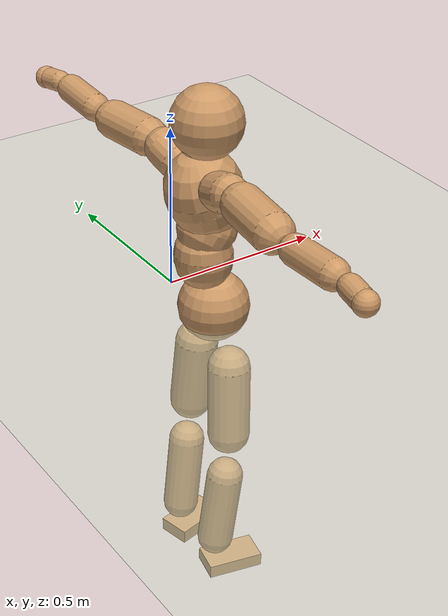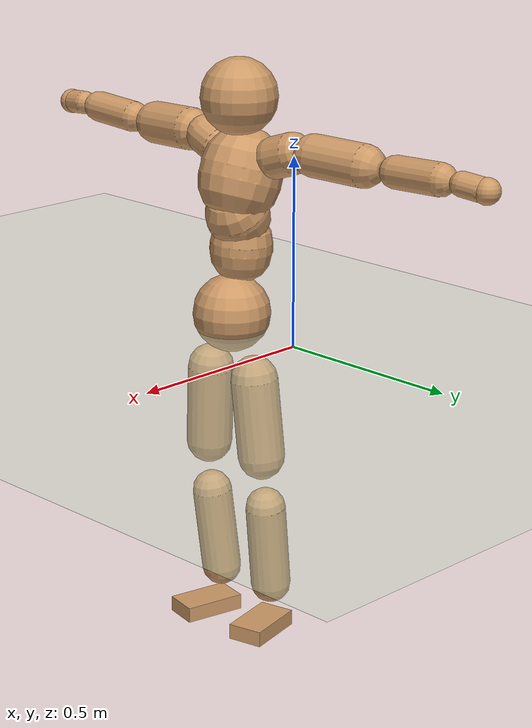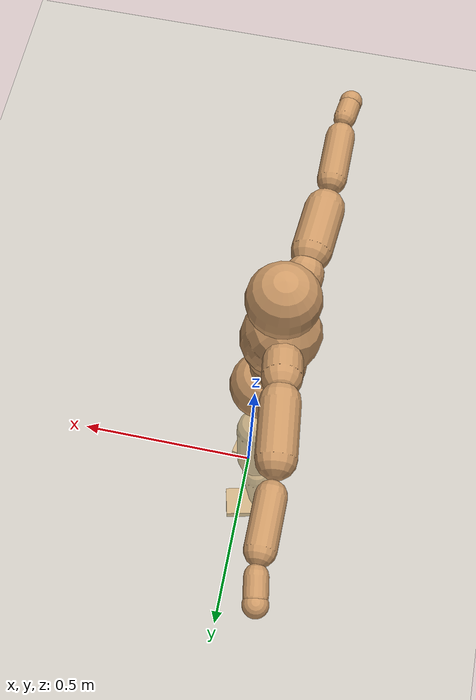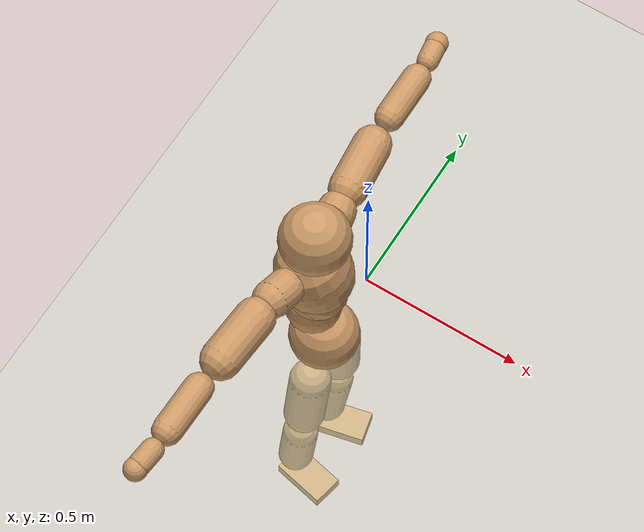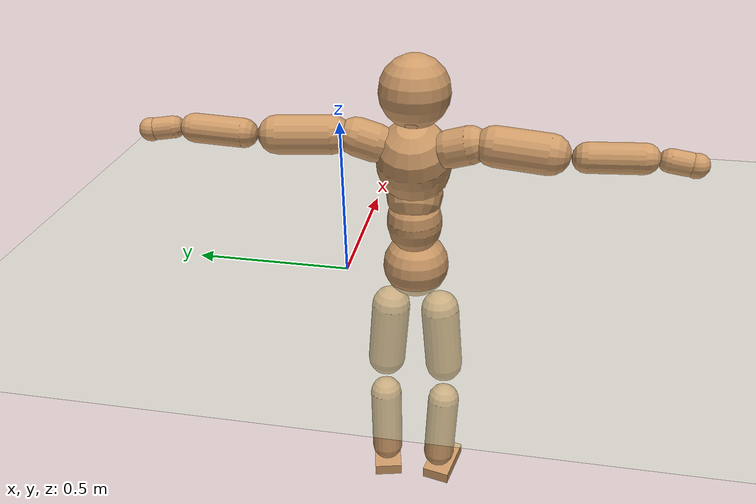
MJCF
<mujoco model="humanoid">
  <compiler coordinate="local"/>
  <default>
    <joint damping="0.0" armature="0.01" stiffness="0.0" limited="true"/>
    <geom conaffinity="1" condim="3" contype="7" margin="0.001" rgba="0.8 0.6 .4 1"/>
  </default>
  <asset>
    <texture type="skybox" builtin="gradient" rgb1=".4 .5 .6" rgb2="0 0 0" width="100" height="100"/>
    <texture builtin="flat" height="1278" mark="cross" markrgb="1 1 1" name="texgeom" random="0.01" rgb1="0.8 0.6 0.4" rgb2="0.8 0.6 0.4" type="cube" width="127"/>
    <texture builtin="checker" height="100" name="texplane" rgb1="0 0 0" rgb2="0.8 0.8 0.8" type="2d" width="100"/>
    <material name="MatPlane" reflectance="0.5" shininess="1" specular="1" texrepeat="60 60" texture="texplane"/>
    <material name="geom" texture="texgeom" texuniform="true"/>
  </asset>
  <worldbody>
    <light cutoff="100" diffuse="1 1 1" dir="-0 0 -1.3" directional="true" exponent="1" pos="0 0 1.3" specular=".1 .1 .1"/>
    <geom conaffinity="1" condim="3" name="floor" pos="0 0 0" rgba="0.8 0.9 0.8 1" size="100 100 .2" type="plane" material="MatPlane"/>
    <body name="Pelvis" pos="-0.0007 -0.2262 0.0439">
      <freejoint name="Pelvis"/>
      <geom type="sphere" contype="1" conaffinity="1" density="500" size="0.1039" pos="0.0000 0.0000 0.0000" name="Pelvis"/>
      <body name="L_Hip" pos="0.0015 0.0766 -0.094">
        <joint name="L_Hip_x" type="hinge" pos="0 0 0" axis="1 0 0" stiffness="800" damping="80" armature="0.02" range="-180.0000 180.0000"/>
        <joint name="L_Hip_y" type="hinge" pos="0 0 0" axis="0 1 0" stiffness="800" damping="80" armature="0.02" range="-180.0000 180.0000"/>
        <joint name="L_Hip_z" type="hinge" pos="0 0 0" axis="0 0 1" stiffness="800" damping="80" armature="0.02" range="-180.0000 180.0000"/>
        <geom type="capsule" contype="1" conaffinity="1" density="500" fromto="-0.0035 0.0052 -0.0720 -0.0141 0.0209 -0.2879" size="0.0627" name="L_Hip"/>
        <body name="L_Knee" pos="-0.0177 0.0261 -0.3599">
          <joint name="L_Knee_x" type="hinge" pos="0 0 0" axis="1 0 0" stiffness="800" damping="80" armature="0.02" range="-180.0000 180.0000"/>
          <joint name="L_Knee_y" type="hinge" pos="0 0 0" axis="0 1 0" stiffness="800" damping="80" armature="0.02" range="-180.0000 180.0000"/>
          <joint name="L_Knee_z" type="hinge" pos="0 0 0" axis="0 0 1" stiffness="800" damping="80" armature="0.02" range="-180.0000 180.0000"/>
          <geom type="capsule" contype="1" conaffinity="1" density="500" fromto="-0.0091 -0.0023 -0.0778 -0.0364 -0.0092 -0.3113" size="0.0537" name="L_Knee"/>
          <body name="L_Ankle" pos="-0.0455 -0.0115 -0.3891">
            <joint name="L_Ankle_x" type="hinge" pos="0 0 0" axis="1 0 0" stiffness="800" damping="80" armature="0.02" range="-180.0000 180.0000"/>
            <joint name="L_Ankle_y" type="hinge" pos="0 0 0" axis="0 1 0" stiffness="800" damping="80" armature="0.02" range="-180.0000 180.0000"/>
            <joint name="L_Ankle_z" type="hinge" pos="0 0 0" axis="0 0 1" stiffness="800" damping="80" armature="0.02" range="-180.0000 180.0000"/>
            <geom type="box" contype="1" conaffinity="1" density="500" pos="0.0576 0.0132 -0.0285" size="0.0822 0.0484 0.0212" quat="0.9937 0.0000 0.0000 0.1122" name="L_Ankle"/>
            <body name="L_Toe" pos="0.1152 0.0264 -0.0569">
              <joint name="L_Toe_x" type="hinge" pos="0 0 0" axis="1 0 0" stiffness="500" damping="50" armature="0.02" range="-180.0000 180.0000"/>
              <joint name="L_Toe_y" type="hinge" pos="0 0 0" axis="0 1 0" stiffness="500" damping="50" armature="0.02" range="-180.0000 180.0000"/>
              <joint name="L_Toe_z" type="hinge" pos="0 0 0" axis="0 0 1" stiffness="500" damping="50" armature="0.02" range="-180.0000 180.0000"/>
              <geom type="box" contype="1" conaffinity="1" density="500" pos="0.0000 0.0000 0.0278" size="0.001 0.0024 0.001" quat="0.9930 0.0000 0.0000 0.1184" name="L_Toe"/>
            </body>
          </body>
        </body>
      </body>
      <body name="R_Hip" pos="0.0049 -0.074 -0.0952">
        <joint name="R_Hip_x" type="hinge" pos="0 0 0" axis="1 0 0" stiffness="800" damping="80" armature="0.02" range="-180.0000 180.0000"/>
        <joint name="R_Hip_y" type="hinge" pos="0 0 0" axis="0 1 0" stiffness="800" damping="80" armature="0.02" range="-180.0000 180.0000"/>
        <joint name="R_Hip_z" type="hinge" pos="0 0 0" axis="0 0 1" stiffness="800" damping="80" armature="0.02" range="-180.0000 180.0000"/>
        <geom type="capsule" contype="1" conaffinity="1" density="500" fromto="-0.0037 -0.0067 -0.0730 -0.0148 -0.0268 -0.2920" size="0.0619" name="R_Hip"/>
        <body name="R_Knee" pos="-0.0185 -0.0335 -0.365">
          <joint name="R_Knee_x" type="hinge" pos="0 0 0" axis="1 0 0" stiffness="800" damping="80" armature="0.02" range="-180.0000 180.0000"/>
          <joint name="R_Knee_y" type="hinge" pos="0 0 0" axis="0 1 0" stiffness="800" damping="80" armature="0.02" range="-180.0000 180.0000"/>
          <joint name="R_Knee_z" type="hinge" pos="0 0 0" axis="0 0 1" stiffness="800" damping="80" armature="0.02" range="-180.0000 180.0000"/>
          <geom type="capsule" contype="1" conaffinity="1" density="500" fromto="-0.0088 0.0027 -0.0782 -0.0352 0.0108 -0.3126" size="0.0538" name="R_Knee"/>
          <body name="R_Ankle" pos="-0.044 0.0135 -0.3908">
            <joint name="R_Ankle_x" type="hinge" pos="0 0 0" axis="1 0 0" stiffness="800" damping="80" armature="0.02" range="-180.0000 180.0000"/>
            <joint name="R_Ankle_y" type="hinge" pos="0 0 0" axis="0 1 0" stiffness="800" damping="80" armature="0.02" range="-180.0000 180.0000"/>
            <joint name="R_Ankle_z" type="hinge" pos="0 0 0" axis="0 0 1" stiffness="800" damping="80" armature="0.02" range="-180.0000 180.0000"/>
            <geom type="box" contype="1" conaffinity="1" density="500" pos="0.0598 -0.0124 -0.0242" size="0.0842 0.0477 0.021" quat="0.9948 0.0000 0.0000 -0.1021" name="R_Ankle"/>
            <body name="R_Toe" pos="0.1195 -0.0248 -0.0483">
              <joint name="R_Toe_x" type="hinge" pos="0 0 0" axis="1 0 0" stiffness="500" damping="50" armature="0.02" range="-180.0000 180.0000"/>
              <joint name="R_Toe_y" type="hinge" pos="0 0 0" axis="0 1 0" stiffness="500" damping="50" armature="0.02" range="-180.0000 180.0000"/>
              <joint name="R_Toe_z" type="hinge" pos="0 0 0" axis="0 0 1" stiffness="500" damping="50" armature="0.02" range="-180.0000 180.0000"/>
              <geom type="box" contype="1" conaffinity="1" density="500" pos="0.0000 0.0000 0.0257" size="0.001 0.0024 0.0011" quat="0.9957 0.0000 0.0000 -0.0926" name="R_Toe"/>
            </body>
          </body>
        </body>
      </body>
      <body name="Torso" pos="-0.0339 -0.0023 0.1102">
        <joint name="Torso_x" type="hinge" pos="0 0 0" axis="1 0 0" stiffness="1000" damping="100" armature="0.02" range="-180.0000 180.0000"/>
        <joint name="Torso_y" type="hinge" pos="0 0 0" axis="0 1 0" stiffness="1000" damping="100" armature="0.02" range="-180.0000 180.0000"/>
        <joint name="Torso_z" type="hinge" pos="0 0 0" axis="0 0 1" stiffness="1000" damping="100" armature="0.02" range="-180.0000 180.0000"/>
        <geom type="capsule" contype="1" conaffinity="1" density="500" fromto="-0.0024 0.0020 0.0745 -0.0016 0.0013 0.0497" size="0.0832" name="Torso"/>
        <body name="Spine" pos="-0.004 0.0033 0.1242">
          <joint name="Spine_x" type="hinge" pos="0 0 0" axis="1 0 0" stiffness="1000" damping="100" armature="0.02" range="-180.0000 180.0000"/>
          <joint name="Spine_y" type="hinge" pos="0 0 0" axis="0 1 0" stiffness="1000" damping="100" armature="0.02" range="-180.0000 180.0000"/>
          <joint name="Spine_z" type="hinge" pos="0 0 0" axis="0 0 1" stiffness="1000" damping="100" armature="0.02" range="-180.0000 180.0000"/>
          <geom type="capsule" contype="1" conaffinity="1" density="500" fromto="0.0201 0.0014 0.0308 0.0134 0.0009 0.0205" size="0.0844" name="Spine"/>
          <body name="Chest" pos="0.0335 0.0023 0.0513">
            <joint name="Chest_x" type="hinge" pos="0 0 0" axis="1 0 0" stiffness="1000" damping="100" armature="0.02" range="-180.0000 180.0000"/>
            <joint name="Chest_y" type="hinge" pos="0 0 0" axis="0 1 0" stiffness="1000" damping="100" armature="0.02" range="-180.0000 180.0000"/>
            <joint name="Chest_z" type="hinge" pos="0 0 0" axis="0 0 1" stiffness="1000" damping="100" armature="0.02" range="-180.0000 180.0000"/>
            <geom type="capsule" contype="1" conaffinity="1" density="500" fromto="-0.0332 -0.0005 0.0978 -0.0221 -0.0004 0.0652" size="0.1093" name="Chest"/>
            <body name="Neck" pos="-0.0694 -0.0013 0.2276">
              <joint name="Neck_x" type="hinge" pos="0 0 0" axis="1 0 0" stiffness="500" damping="50" armature="0.02" range="-180.0000 180.0000"/>
              <joint name="Neck_y" type="hinge" pos="0 0 0" axis="0 1 0" stiffness="500" damping="50" armature="0.02" range="-180.0000 180.0000"/>
              <joint name="Neck_z" type="hinge" pos="0 0 0" axis="0 0 1" stiffness="500" damping="50" armature="0.02" range="-180.0000 180.0000"/>
              <geom type="capsule" contype="1" conaffinity="1" density="500" fromto="0.0094 0.0001 0.0115 0.0375 0.0004 0.0460" size="0.0442" name="Neck"/>
              <body name="Head" pos="0.0469 0.0005 0.0575">
                <joint name="Head_x" type="hinge" pos="0 0 0" axis="1 0 0" stiffness="500" damping="50" armature="0.02" range="-180.0000 180.0000"/>
                <joint name="Head_y" type="hinge" pos="0 0 0" axis="0 1 0" stiffness="500" damping="50" armature="0.02" range="-180.0000 180.0000"/>
                <joint name="Head_z" type="hinge" pos="0 0 0" axis="0 0 1" stiffness="500" damping="50" armature="0.02" range="-180.0000 180.0000"/>
                <geom type="sphere" contype="1" conaffinity="1" density="500" size="0.1019" pos="0.0000 0.0000 0.0000" name="Head"/>
              </body>
            </body>
            <body name="L_Thorax" pos="-0.0461 0.0847 0.1317">
              <joint name="L_Thorax_x" type="hinge" pos="0 0 0" axis="1 0 0" stiffness="500" damping="50" armature="0.02" range="-180.0000 180.0000"/>
              <joint name="L_Thorax_y" type="hinge" pos="0 0 0" axis="0 1 0" stiffness="500" damping="50" armature="0.02" range="-180.0000 180.0000"/>
              <joint name="L_Thorax_z" type="hinge" pos="0 0 0" axis="0 0 1" stiffness="500" damping="50" armature="0.02" range="-180.0000 180.0000"/>
              <geom type="capsule" contype="1" conaffinity="1" density="500" fromto="-0.0022 0.0184 0.0061 -0.0087 0.0736 0.0246" size="0.0555" name="L_Thorax"/>
              <body name="L_Shoulder" pos="-0.0108 0.0921 0.0307">
                <joint name="L_Shoulder_x" type="hinge" pos="0 0 0" axis="1 0 0" stiffness="500" damping="50" armature="0.02" range="-720.0000 720.0000"/>
                <joint name="L_Shoulder_y" type="hinge" pos="0 0 0" axis="0 1 0" stiffness="500" damping="50" armature="0.02" range="-720.0000 720.0000"/>
                <joint name="L_Shoulder_z" type="hinge" pos="0 0 0" axis="0 0 1" stiffness="500" damping="50" armature="0.02" range="-720.0000 720.0000"/>
                <geom type="capsule" contype="1" conaffinity="1" density="500" fromto="-0.0058 0.0511 -0.0013 -0.0231 0.2043 -0.0053" size="0.056" name="L_Shoulder"/>
                <body name="L_Elbow" pos="-0.0289 0.2554 -0.0066">
                  <joint name="L_Elbow_x" type="hinge" pos="0 0 0" axis="1 0 0" stiffness="500" damping="50" armature="0.02" range="-720.0000 720.0000"/>
                  <joint name="L_Elbow_y" type="hinge" pos="0 0 0" axis="0 1 0" stiffness="500" damping="50" armature="0.02" range="-720.0000 720.0000"/>
                  <joint name="L_Elbow_z" type="hinge" pos="0 0 0" axis="0 0 1" stiffness="500" damping="50" armature="0.02" range="-720.0000 720.0000"/>
                  <geom type="capsule" contype="1" conaffinity="1" density="500" fromto="0.0003 0.0477 0.0018 0.0011 0.1907 0.0072" size="0.042" name="L_Elbow"/>
                  <body name="L_Wrist" pos="0.0013 0.2383 0.009">
                    <joint name="L_Wrist_x" type="hinge" pos="0 0 0" axis="1 0 0" stiffness="300" damping="30" armature="0.02" range="-180.0000 180.0000"/>
                    <joint name="L_Wrist_y" type="hinge" pos="0 0 0" axis="0 1 0" stiffness="300" damping="30" armature="0.02" range="-180.0000 180.0000"/>
                    <joint name="L_Wrist_z" type="hinge" pos="0 0 0" axis="0 0 1" stiffness="300" damping="30" armature="0.02" range="-180.0000 180.0000"/>
                    <geom type="capsule" contype="1" conaffinity="1" density="500" fromto="-0.0027 0.0166 -0.0020 -0.0108 0.0664 -0.0078" size="0.0318" name="L_Wrist"/>
                    <body name="L_Hand" pos="-0.0135 0.0831 -0.0098">
                      <joint name="L_Hand_x" type="hinge" pos="0 0 0" axis="1 0 0" stiffness="300" damping="30" armature="0.02" range="-180.0000 180.0000"/>
                      <joint name="L_Hand_y" type="hinge" pos="0 0 0" axis="0 1 0" stiffness="300" damping="30" armature="0.02" range="-180.0000 180.0000"/>
                      <joint name="L_Hand_z" type="hinge" pos="0 0 0" axis="0 0 1" stiffness="300" damping="30" armature="0.02" range="-180.0000 180.0000"/>
                      <geom type="sphere" contype="1" conaffinity="1" density="500" size="0.0336" pos="0.0000 0.0000 0.0000" name="L_Hand"/>
                    </body>
                  </body>
                </body>
              </body>
            </body>
            <body name="R_Thorax" pos="-0.0503 -0.0861 0.1297">
              <joint name="R_Thorax_x" type="hinge" pos="0 0 0" axis="1 0 0" stiffness="500" damping="50" armature="0.02" range="-180.0000 180.0000"/>
              <joint name="R_Thorax_y" type="hinge" pos="0 0 0" axis="0 1 0" stiffness="500" damping="50" armature="0.02" range="-180.0000 180.0000"/>
              <joint name="R_Thorax_z" type="hinge" pos="0 0 0" axis="0 0 1" stiffness="500" damping="50" armature="0.02" range="-180.0000 180.0000"/>
              <geom type="capsule" contype="1" conaffinity="1" density="500" fromto="-0.0024 -0.0189 0.0064 -0.0097 -0.0758 0.0258" size="0.0546" name="R_Thorax"/>
              <body name="R_Shoulder" pos="-0.0121 -0.0947 0.0322">
                <joint name="R_Shoulder_x" type="hinge" pos="0 0 0" axis="1 0 0" stiffness="500" damping="50" armature="0.02" range="-720.0000 720.0000"/>
                <joint name="R_Shoulder_y" type="hinge" pos="0 0 0" axis="0 1 0" stiffness="500" damping="50" armature="0.02" range="-720.0000 720.0000"/>
                <joint name="R_Shoulder_z" type="hinge" pos="0 0 0" axis="0 0 1" stiffness="500" damping="50" armature="0.02" range="-720.0000 720.0000"/>
                <geom type="capsule" contype="1" conaffinity="1" density="500" fromto="-0.0043 -0.0499 -0.0023 -0.0171 -0.1997 -0.0091" size="0.0576" name="R_Shoulder"/>
                <body name="R_Elbow" pos="-0.0214 -0.2496 -0.0114">
                  <joint name="R_Elbow_x" type="hinge" pos="0 0 0" axis="1 0 0" stiffness="500" damping="50" armature="0.02" range="-720.0000 720.0000"/>
                  <joint name="R_Elbow_y" type="hinge" pos="0 0 0" axis="0 1 0" stiffness="500" damping="50" armature="0.02" range="-720.0000 720.0000"/>
                  <joint name="R_Elbow_z" type="hinge" pos="0 0 0" axis="0 0 1" stiffness="500" damping="50" armature="0.02" range="-720.0000 720.0000"/>
                  <geom type="capsule" contype="1" conaffinity="1" density="500" fromto="-0.0002 -0.0491 0.0025 -0.0007 -0.1964 0.0101" size="0.0423" name="R_Elbow"/>
                  <body name="R_Wrist" pos="-0.0009 -0.2455 0.0126">
                    <joint name="R_Wrist_x" type="hinge" pos="0 0 0" axis="1 0 0" stiffness="300" damping="30" armature="0.02" range="-180.0000 180.0000"/>
                    <joint name="R_Wrist_y" type="hinge" pos="0 0 0" axis="0 1 0" stiffness="300" damping="30" armature="0.02" range="-180.0000 180.0000"/>
                    <joint name="R_Wrist_z" type="hinge" pos="0 0 0" axis="0 0 1" stiffness="300" damping="30" armature="0.02" range="-180.0000 180.0000"/>
                    <geom type="capsule" contype="1" conaffinity="1" density="500" fromto="-0.0022 -0.0167 -0.0015 -0.0087 -0.0669 -0.0059" size="0.0324" name="R_Wrist"/>
                    <body name="R_Hand" pos="-0.0109 -0.0836 -0.0074">
                      <joint name="R_Hand_x" type="hinge" pos="0 0 0" axis="1 0 0" stiffness="300" damping="30" armature="0.02" range="-180.0000 180.0000"/>
                      <joint name="R_Hand_y" type="hinge" pos="0 0 0" axis="0 1 0" stiffness="300" damping="30" armature="0.02" range="-180.0000 180.0000"/>
                      <joint name="R_Hand_z" type="hinge" pos="0 0 0" axis="0 0 1" stiffness="300" damping="30" armature="0.02" range="-180.0000 180.0000"/>
                      <geom type="sphere" contype="1" conaffinity="1" density="500" size="0.0337" pos="0.0000 0.0000 0.0000" name="R_Hand"/>
                    </body>
                  </body>
                </body>
              </body>
            </body>
          </body>
        </body>
      </body>
    </body>
  </worldbody>
  <actuator>
    <motor name="L_Hip_x" joint="L_Hip_x" gear="500"/>
    <motor name="L_Hip_y" joint="L_Hip_y" gear="500"/>
    <motor name="L_Hip_z" joint="L_Hip_z" gear="500"/>
    <motor name="L_Knee_x" joint="L_Knee_x" gear="500"/>
    <motor name="L_Knee_y" joint="L_Knee_y" gear="500"/>
    <motor name="L_Knee_z" joint="L_Knee_z" gear="500"/>
    <motor name="L_Ankle_x" joint="L_Ankle_x" gear="500"/>
    <motor name="L_Ankle_y" joint="L_Ankle_y" gear="500"/>
    <motor name="L_Ankle_z" joint="L_Ankle_z" gear="500"/>
    <motor name="L_Toe_x" joint="L_Toe_x" gear="500"/>
    <motor name="L_Toe_y" joint="L_Toe_y" gear="500"/>
    <motor name="L_Toe_z" joint="L_Toe_z" gear="500"/>
    <motor name="R_Hip_x" joint="R_Hip_x" gear="500"/>
    <motor name="R_Hip_y" joint="R_Hip_y" gear="500"/>
    <motor name="R_Hip_z" joint="R_Hip_z" gear="500"/>
    <motor name="R_Knee_x" joint="R_Knee_x" gear="500"/>
    <motor name="R_Knee_y" joint="R_Knee_y" gear="500"/>
    <motor name="R_Knee_z" joint="R_Knee_z" gear="500"/>
    <motor name="R_Ankle_x" joint="R_Ankle_x" gear="500"/>
    <motor name="R_Ankle_y" joint="R_Ankle_y" gear="500"/>
    <motor name="R_Ankle_z" joint="R_Ankle_z" gear="500"/>
    <motor name="R_Toe_x" joint="R_Toe_x" gear="500"/>
    <motor name="R_Toe_y" joint="R_Toe_y" gear="500"/>
    <motor name="R_Toe_z" joint="R_Toe_z" gear="500"/>
    <motor name="Torso_x" joint="Torso_x" gear="500"/>
    <motor name="Torso_y" joint="Torso_y" gear="500"/>
    <motor name="Torso_z" joint="Torso_z" gear="500"/>
    <motor name="Spine_x" joint="Spine_x" gear="500"/>
    <motor name="Spine_y" joint="Spine_y" gear="500"/>
    <motor name="Spine_z" joint="Spine_z" gear="500"/>
    <motor name="Chest_x" joint="Chest_x" gear="500"/>
    <motor name="Chest_y" joint="Chest_y" gear="500"/>
    <motor name="Chest_z" joint="Chest_z" gear="500"/>
    <motor name="Neck_x" joint="Neck_x" gear="500"/>
    <motor name="Neck_y" joint="Neck_y" gear="500"/>
    <motor name="Neck_z" joint="Neck_z" gear="500"/>
    <motor name="Head_x" joint="Head_x" gear="500"/>
    <motor name="Head_y" joint="Head_y" gear="500"/>
    <motor name="Head_z" joint="Head_z" gear="500"/>
    <motor name="L_Thorax_x" joint="L_Thorax_x" gear="500"/>
    <motor name="L_Thorax_y" joint="L_Thorax_y" gear="500"/>
    <motor name="L_Thorax_z" joint="L_Thorax_z" gear="500"/>
    <motor name="L_Shoulder_x" joint="L_Shoulder_x" gear="500"/>
    <motor name="L_Shoulder_y" joint="L_Shoulder_y" gear="500"/>
    <motor name="L_Shoulder_z" joint="L_Shoulder_z" gear="500"/>
    <motor name="L_Elbow_x" joint="L_Elbow_x" gear="500"/>
    <motor name="L_Elbow_y" joint="L_Elbow_y" gear="500"/>
    <motor name="L_Elbow_z" joint="L_Elbow_z" gear="500"/>
    <motor name="L_Wrist_x" joint="L_Wrist_x" gear="500"/>
    <motor name="L_Wrist_y" joint="L_Wrist_y" gear="500"/>
    <motor name="L_Wrist_z" joint="L_Wrist_z" gear="500"/>
    <motor name="L_Hand_x" joint="L_Hand_x" gear="500"/>
    <motor name="L_Hand_y" joint="L_Hand_y" gear="500"/>
    <motor name="L_Hand_z" joint="L_Hand_z" gear="500"/>
    <motor name="R_Thorax_x" joint="R_Thorax_x" gear="500"/>
    <motor name="R_Thorax_y" joint="R_Thorax_y" gear="500"/>
    <motor name="R_Thorax_z" joint="R_Thorax_z" gear="500"/>
    <motor name="R_Shoulder_x" joint="R_Shoulder_x" gear="500"/>
    <motor name="R_Shoulder_y" joint="R_Shoulder_y" gear="500"/>
    <motor name="R_Shoulder_z" joint="R_Shoulder_z" gear="500"/>
    <motor name="R_Elbow_x" joint="R_Elbow_x" gear="500"/>
    <motor name="R_Elbow_y" joint="R_Elbow_y" gear="500"/>
    <motor name="R_Elbow_z" joint="R_Elbow_z" gear="500"/>
    <motor name="R_Wrist_x" joint="R_Wrist_x" gear="500"/>
    <motor name="R_Wrist_y" joint="R_Wrist_y" gear="500"/>
    <motor name="R_Wrist_z" joint="R_Wrist_z" gear="500"/>
    <motor name="R_Hand_x" joint="R_Hand_x" gear="500"/>
    <motor name="R_Hand_y" joint="R_Hand_y" gear="500"/>
    <motor name="R_Hand_z" joint="R_Hand_z" gear="500"/>
  </actuator>
  <contact>
    <exclude body1="Torso" body2="Chest"/>
    <exclude body1="Head" body2="Chest"/>
    <exclude body1="R_Knee" body2="R_Toe"/>
    <exclude body1="R_Knee" body2="L_Ankle"/>
    <exclude body1="R_Knee" body2="L_Toe"/>
    <exclude body1="L_Knee" body2="L_Toe"/>
    <exclude body1="L_Knee" body2="R_Ankle"/>
    <exclude body1="L_Knee" body2="R_Toe"/>
    <exclude body1="L_Shoulder" body2="Chest"/>
    <exclude body1="R_Shoulder" body2="Chest"/>
  </contact>
  <sensor/>
  <size njmax="700" nconmax="700"/>
</mujoco>
